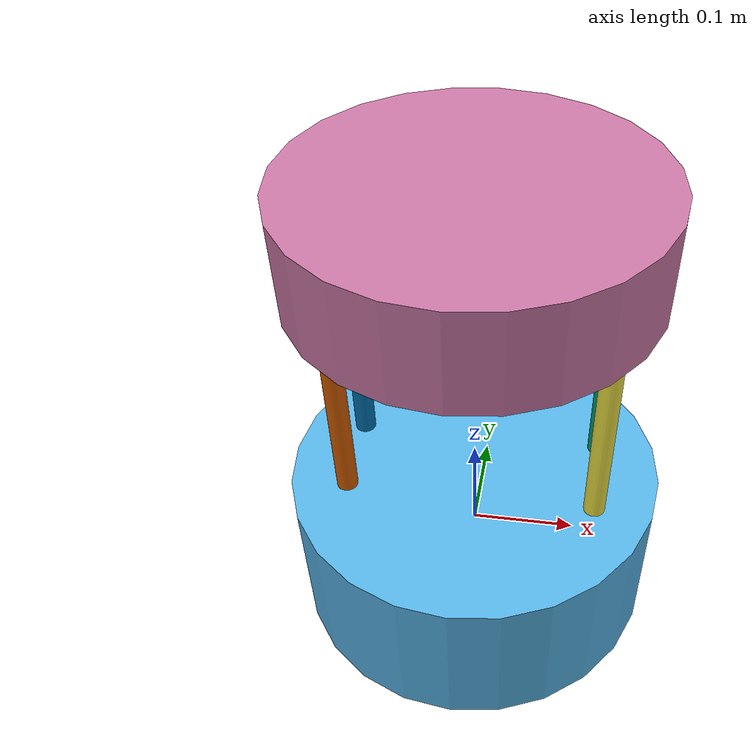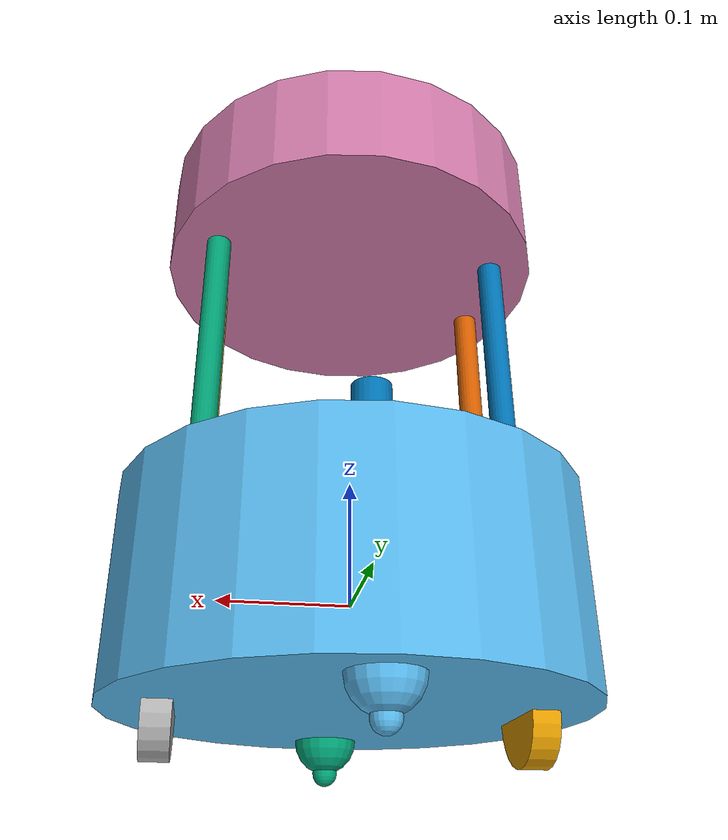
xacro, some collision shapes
<?xml version="1.0"?>
<robot xmlns:xacro="http://www.ros.org/wiki/xacro" name="barista_robot">

    <xacro:arg name="include_laser" default="true"/>

    <xacro:property name="robot_name" value="$(arg robot_name)"/>

    <xacro:include filename="$(find barista_robot_description)/xacro/wheel.xacro" />
    <xacro:include filename="$(find barista_robot_description)/xacro/standoff.xacro" />
    <xacro:include filename="$(find barista_robot_description)/xacro/cup_holder_tray.xacro" />
    <xacro:include filename="$(find barista_robot_description)/xacro/laser_scanner.xacro" />

    <link name="base_link">
    </link>

  <!-- Body -->
    <link name="chassis">
        <visual>
            <geometry>
                <cylinder length="0.155" radius="0.178"/>
            </geometry>
        </visual>

        <collision>
            <geometry>
                <cylinder length="0.155" radius="0.178"/>
            </geometry>
        </collision>

        <inertial>
            <mass value="0.5"/>
            <origin rpy="0 0 0" xyz="0 0 0"/>
            <inertia ixx="0.004962" ixy="0" ixz="0" iyy="0.004962" iyz="0" izz="0.007921"/>
        </inertial>
    </link>

    <joint name="base_chassis_link_joint" type="fixed">
        <origin rpy="0 0 0" xyz="0 0 0" />
        <parent link="base_link" />
        <child link="chassis" />
    </joint>

  <!-- Standoffs -->
    <xacro:stadoff_element stadoff_name="standoff_1" stadoff_position="0.118 0.04 0.0775" />
    <xacro:stadoff_element stadoff_name="standoff_2" stadoff_position="0.118 -0.04 0.0775" />
    <xacro:stadoff_element stadoff_name="standoff_3" stadoff_position="-0.118 0.04 0.0775" />
    <xacro:stadoff_element stadoff_name="standoff_4" stadoff_position="-0.118 -0.04 0.0775" />

  <!-- cup tray -->
    <xacro:cup_tray_element tray_position="0 0 0.2975" />

  <!-- wheels -->
    <xacro:wheel_element wheel_name="wheel_right" wheel_position="0.133 0 -0.0775"/>
    <xacro:wheel_element wheel_name="wheel_left" wheel_position="-0.133 0 -0.0775"/>

    <xacro:caster_element caster_name="caster_front" caster_position="0 0.133 -0.0775" />
    <xacro:caster_element caster_name="caster_back" caster_position="0 -0.133 -0.0775" />

  <!-- laser -->
    <xacro:if value="$(arg include_laser)">
        <xacro:laser_element />
    </xacro:if>

    <gazebo>
        <plugin filename="libgazebo_ros_diff_drive.so" name="differential_drive_controller">

            <ros>
                <namespace>/${robot_name}</namespace>
                <remapping>/cmd_vel:=cmd_vel</remapping>
            </ros>

            <!-- wheels -->
            <left_joint>wheel_left_chassis_link_joint</left_joint>
            <right_joint>wheel_right_chassis_link_joint</right_joint>

            <!-- kinematics -->
            <wheel_separation>0.266</wheel_separation>
            <wheel_diameter>0.0704</wheel_diameter>

            <!-- limits -->
            <max_wheel_torque>1.0</max_wheel_torque>
            <max_wheel_acceleration>2.0</max_wheel_acceleration>

            <!-- output -->
            <publish_odom>true</publish_odom>
            <publish_odom_tf>true</publish_odom_tf>

            <odometry_frame>${robot_name}/odom</odometry_frame>>
            <robot_base_frame>${robot_name}/base_link</robot_base_frame>

        </plugin>

        <plugin name="box_bot_joint_state" filename="libgazebo_ros_joint_state_publisher.so">
            <ros>
                <namespace>/${robot_name}</namespace>
                <remapping>~/out:=joint_states</remapping>
            </ros>
            <update_rate>30</update_rate>

            <joint_name>wheel_left_chassis_link_joint</joint_name>
            <joint_name>wheel_right_chassis_link_joint</joint_name>

        </plugin>

    </gazebo>

</robot>

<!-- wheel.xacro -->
<robot xmlns:xacro="http://www.ros.org/wiki/xacro">

    <xacro:property name="wheel_width" value="0.0206"/>
    <xacro:property name="wheel_radius" value="0.0352"/>

    <xacro:property name="half_pi_rad" value="1.5707"/>

    <xacro:macro name="wheel_element" params="wheel_name wheel_position">
        <link name="${wheel_name}">
            <visual>
                <geometry>
                    <cylinder length="${wheel_width}" radius="${wheel_radius}"/>
                </geometry>
                <origin rpy="0 ${half_pi_rad} 0" xyz="0 0 0"/>
            </visual>

            <collision>
                <geometry>
                    <cylinder length="${wheel_width}" radius="${wheel_radius}"/>
                </geometry>
                <origin rpy="0 ${half_pi_rad} 0" xyz="0 0 0"/>
            </collision>

            <inertial>
                <origin rpy="0 ${half_pi_rad} 0" xyz="0 0 0"/>
                <mass value="0.1"/>
                <inertia ixx="0.00003451" ixy="0" ixz="0" iyy="0.00003451" iyz="0" izz="0.00006195"/>
            </inertial>
        </link>

        <joint name="${wheel_name}_chassis_link_joint" type="continuous">
            <origin rpy="0 0 0" xyz="${wheel_position}" />
            <parent link="chassis" />
            <child link="${wheel_name}" />
            <axis rpy="0 0 0" xyz="1 0 0"/>
            <limit effort="10000" velocity="1000"/>
            <joint_properties damping="1.0" friction="1.0"/>
        </joint>

        <gazebo reference="${wheel_name}">
            <kp>1000000000000000000000000000.0</kp>
            <kd>1000000000000000000000000000.0</kd>
            <mu1>10.0</mu1>
            <mu2>10.0</mu2>
        </gazebo>
    </xacro:macro>

    <xacro:macro name="caster_element" params="caster_name caster_position">
        <link name="${caster_name}">
            <visual>
                <geometry>
                    <sphere radius="0.0252"/>
                </geometry>
            </visual>

            <visual>
                <origin rpy="0 0 0" xyz="0 0 -0.0252"/>
                <geometry>
                    <sphere radius="0.01"/>
                </geometry>
            </visual>

            <collision>
                <geometry>
                    <sphere radius="0.0352"/>
                </geometry>
            </collision>

            <inertial>
                <mass value="0.01"/>
                <origin rpy="0 ${half_pi_rad} ${half_pi_rad}" xyz="0 0 0"/>
                <inertia ixx="0.000004234" ixy="0" ixz="0" iyy="0.000004234" iyz="0" izz="0.000004234"/>
            </inertial>
        </link>

        <joint name="${caster_name}_chassis_link_joint" type="fixed">
            <origin rpy="0 0 0" xyz="${caster_position}" />
            <parent link="chassis" />
            <child link="${caster_name}" />
        </joint>

        <gazebo reference="${caster_name}">
            <kp>1000000000000000000000000000.0</kp>
            <kd>1000000000000000000000000000.0</kd>
            <mu1>0</mu1>
            <mu2>0</mu2>
        </gazebo>
    </xacro:macro>
</robot>

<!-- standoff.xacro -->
<robot xmlns:xacro="http://www.ros.org/wiki/xacro">

    <xacro:property name="stadoff_length" value="0.220"/>
    <xacro:property name="stadoff_radius" value="0.01"/>

    <xacro:macro name="stadoff_element" params="stadoff_name stadoff_position">
        <link name="${stadoff_name}">
            <visual>
                <geometry>
                    <cylinder length="${stadoff_length}" radius="${stadoff_radius}"/>
                </geometry>
                <origin rpy="0 0 0" xyz="0 0 ${stadoff_length/2}" />
            </visual>

            <collision>
                <geometry>
                    <cylinder length="${stadoff_length}" radius="${stadoff_radius}"/>
                </geometry>
                <origin rpy="0 0 0" xyz="0 0 ${stadoff_length/2}" />
            </collision>

            <inertial>
                <origin rpy="0 0 0" xyz="0 0 ${stadoff_length/2}"/>
                <mass value="0.05"/>
                <inertia ixx="0.0002029" ixy="0" ixz="0" iyy="0.0002029" iyz="0" izz="0.0000025"/>
            </inertial>
        </link>

        <joint name="${stadoff_name}_chassis_link_joint" type="fixed">
            <origin rpy="0 0 0" xyz="${stadoff_position}" />
            <parent link="chassis" />
            <child link="${stadoff_name}" />
        </joint>
    </xacro:macro>

</robot>

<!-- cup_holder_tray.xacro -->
<robot xmlns:xacro="http://www.ros.org/wiki/xacro">

    <xacro:property name="tray_length" value="0.090"/>
    <xacro:property name="tray_radius" value="0.160"/>

    <xacro:macro name="cup_tray_element" params="tray_position">
        <link name="cup_tray">
            <visual>
                <geometry>
                    <cylinder length="${tray_length}" radius="${tray_radius}"/>
                </geometry>
                <origin rpy="0 0 0" xyz="0 0 ${tray_length/2}" />
            </visual>

            <collision>
                <geometry>
                    <cylinder length="${tray_length}" radius="${tray_radius}"/>
                </geometry>
                <origin rpy="0 0 0" xyz="0 0 ${tray_length/2}" />
            </collision>

            <inertial>
                <mass value="0.1"/>
                <origin rpy="0 0 0" xyz="0 0 ${tray_length/2}" />
                <inertia ixx="0.0007075" ixy="0" ixz="0" iyy="0.0007075" iyz="0" izz="0.00128"/>
            </inertial>
        </link>

        <joint name="cup_tray_chassis_link_joint" type="fixed">
            <origin rpy="0 0 0" xyz="${tray_position}" />
            <parent link="chassis" />
            <child link="cup_tray" />
        </joint>
    </xacro:macro>

</robot>

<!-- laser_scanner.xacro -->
<robot xmlns:xacro="http://www.ros.org/wiki/xacro">

    <xacro:property name="laser_base_length" value="0.03"/>
    <xacro:property name="laser_base_radius" value="0.02"/>

    <xacro:property name="laser_frame_length" value="0.04"/>
    <xacro:property name="laser_frame_radius" value="0.015"/>

    <xacro:macro name="laser_element">
        <link name="laser_base">
            <visual>
                <geometry>
                    <cylinder length="${laser_base_length}" radius="${laser_base_radius}"/>
                </geometry>
                <origin rpy="0 0 0" xyz="0 0 ${laser_base_length/2}"/>
            </visual>

            <collision>
                <geometry>
                    <cylinder length="0.03" radius="0.02"/>
                </geometry>
                <origin rpy="0 0 0" xyz="0 0 ${laser_base_length/2}"/>
            </collision>

            <inertial>
                <mass value="0.01"/>
                <origin rpy="0 0 0" xyz="0 0 ${laser_base_length/2}"/>
                <inertia ixx="0.00000175" ixy="0" ixz="0" iyy="0.00000175" iyz="0" izz="0.000002"/>
            </inertial>
        </link>

        <link name="laser_frame">
            <visual>
                <geometry>
                    <mesh filename="package://barista_robot_description/meshes/hokuyo3d.dae" scale="0.5 0.5 0.5"/>
                </geometry>
                <origin rpy="0 0 0" xyz="0 0 ${laser_frame_length/2}"/>
            </visual>

            <collision>
                <geometry>
                    <cylinder length="${laser_frame_length}" radius="${laser_frame_radius}"/>
                </geometry>
                <origin rpy="0 0 0" xyz="0 0 ${laser_frame_length/2}"/>
            </collision>

            <inertial>
                <mass value="0.01"/>
                <origin rpy="0 0 0" xyz="0 0 ${laser_frame_length/2}"/>
                <inertia ixx="0.0001339" ixy="0" ixz="0" iyy="0.0001339" iyz="0" izz="0.000001125"/>
            </inertial>
        </link>

        <joint name="laser_base_chassis_link_joint" type="fixed">
            <origin rpy="0 0 0" xyz="0 0.1 0.0775" />
            <parent link="chassis" />
            <child link="laser_base" />
        </joint>

        <joint name="laser_frame_laser_base_link_joint" type="fixed">
            <origin rpy="0 0 0" xyz="0 0 0.015" />
            <parent link="laser_base" />
            <child link="laser_frame" />
        </joint>

        <gazebo reference="laser_frame">
            <sensor name="sensor_ray" type="ray">
                <pose>0 0 0 0 0 0</pose>
                <ray>
                <scan>
                    <horizontal>
                    <samples>200</samples>
                    <resolution>1.0</resolution>
                    <min_angle>-3.14</min_angle>
                    <max_angle>3.14</max_angle>
                    </horizontal>
                </scan>
                <range>
                    <min>0.05</min>
                    <max>5.0</max>
                </range>
                </ray>
                <always_on>true</always_on>
                <visualize>true</visualize>
                <update_rate>100.0</update_rate>
                <plugin name="laser" filename="libgazebo_ros_ray_sensor.so">
                <ros>
                    <namespace>/${robot_name}</namespace>
                    <remapping>~/out:=scan</remapping>
                </ros>
                <output_type>sensor_msgs/LaserScan</output_type>
                </plugin>
            </sensor>
        </gazebo>
    </xacro:macro>

</robot>
